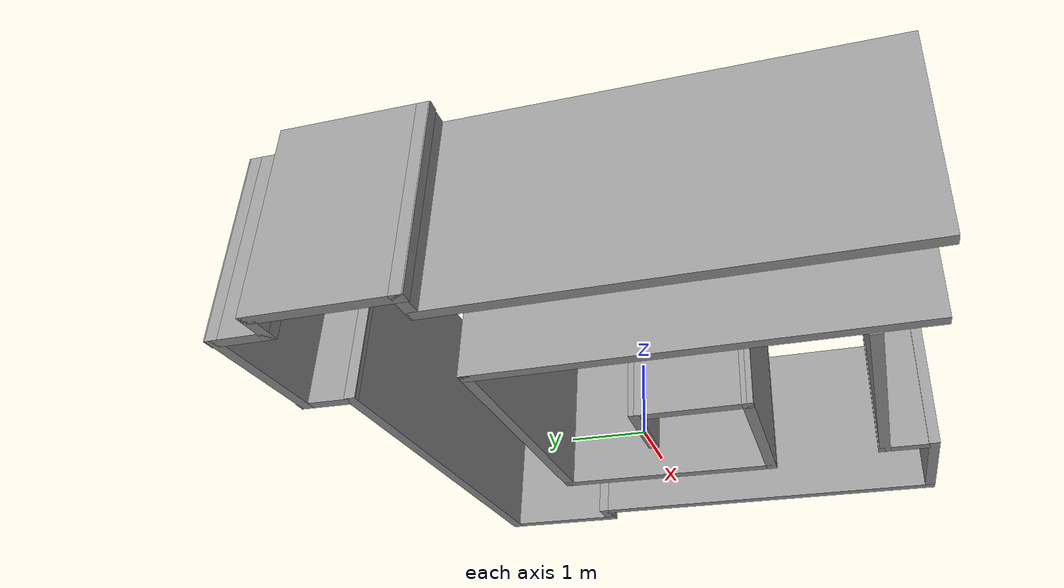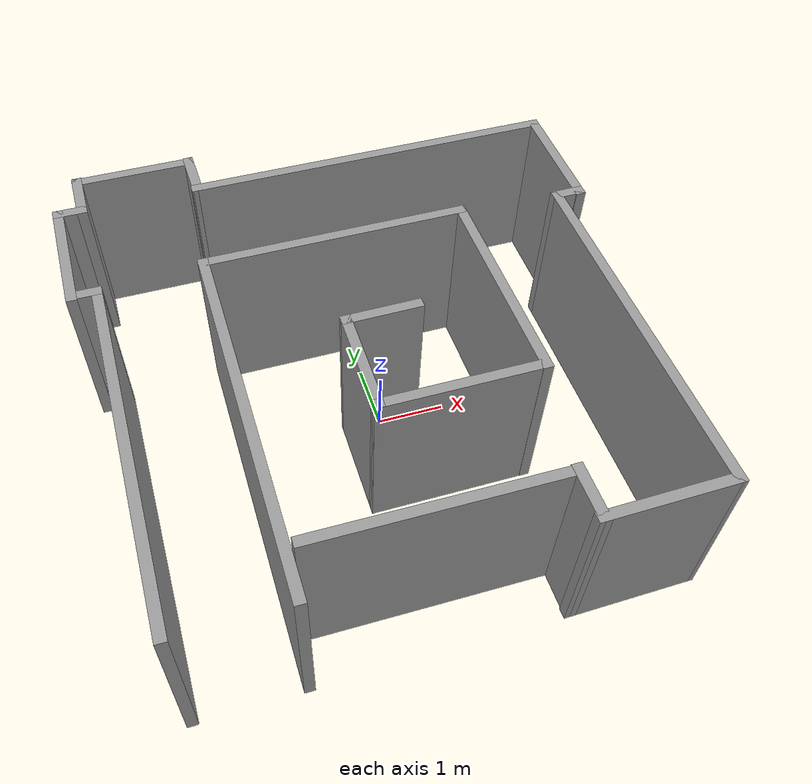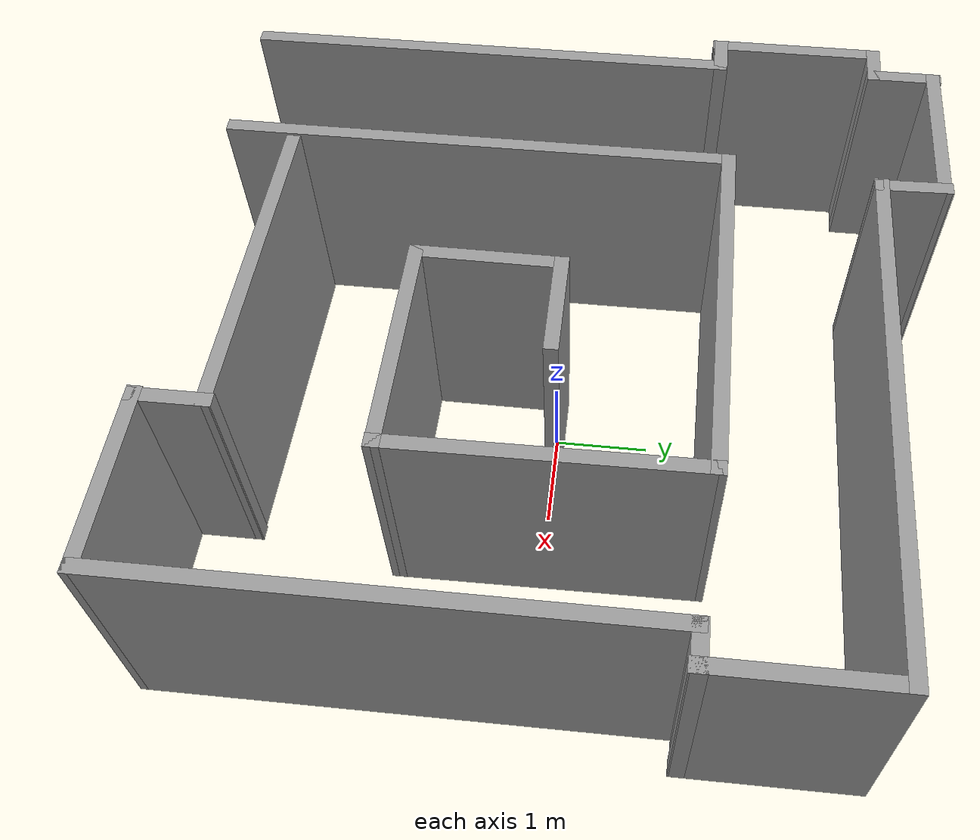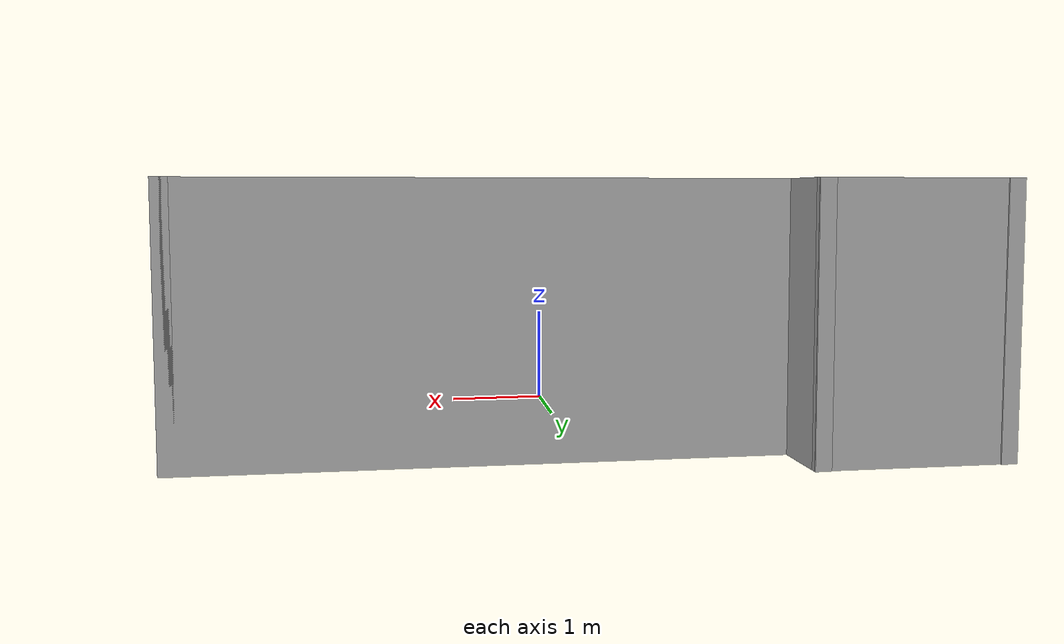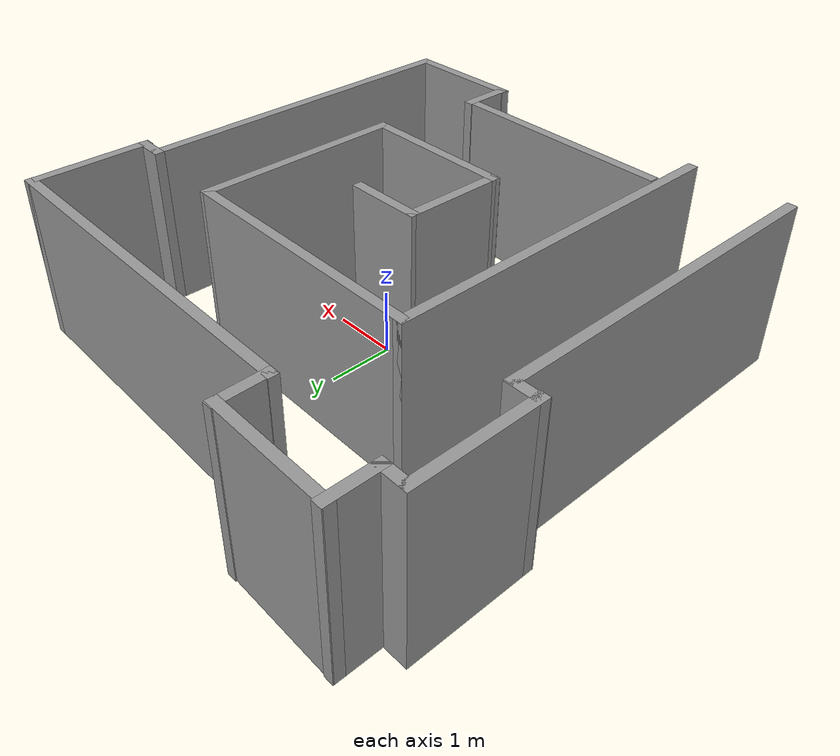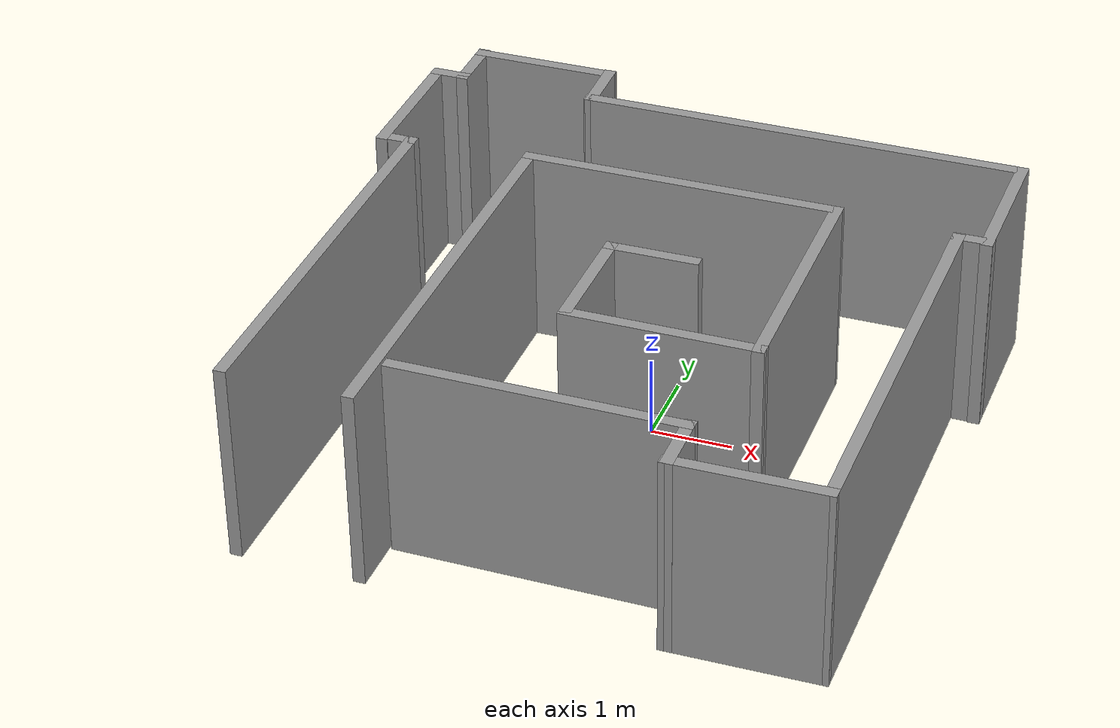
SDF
<?xml version='1.0'?>
<sdf version='1.7'>
  <model name='Muri_9a'>
    <pose>-0.203865 0.066361 0 0 -0 0</pose>
    <link name='Wall_0'>
      <collision name='Wall_0_Collision'>
        <geometry>
          <box>
            <size>5.36043 0.15 2.5</size>
          </box>
        </geometry>
        <pose>0 0 1.25 0 -0 0</pose>
      </collision>
      <visual name='Wall_0_Visual'>
        <pose>0 0 1.25 0 -0 0</pose>
        <geometry>
          <box>
            <size>5.36043 0.15 2.5</size>
          </box>
        </geometry>
        <material>
          <script>
            <uri>file://media/materials/scripts/gazebo.material</uri>
            <name>Gazebo/Grey</name>
          </script>
          <ambient>1 1 1 1</ambient>
        </material>
        <meta>
          <layer>0</layer>
        </meta>
      </visual>
      <pose>-3.425 -1.19359 0 0 -0 1.5708</pose>
    </link>
    <link name='Wall_1'>
      <collision name='Wall_1_Collision'>
        <geometry>
          <box>
            <size>0.5 0.15 2.5</size>
          </box>
        </geometry>
        <pose>0 0 1.25 0 -0 0</pose>
      </collision>
      <visual name='Wall_1_Visual'>
        <pose>0 0 1.25 0 -0 0</pose>
        <geometry>
          <box>
            <size>0.5 0.15 2.5</size>
          </box>
        </geometry>
        <material>
          <script>
            <uri>file://media/materials/scripts/gazebo.material</uri>
            <name>Gazebo/Grey</name>
          </script>
          <ambient>1 1 1 1</ambient>
        </material>
        <meta>
          <layer>0</layer>
        </meta>
      </visual>
      <pose>-3.6 1.42713 0 0 -0 3.14159</pose>
    </link>
    <link name='Wall_10'>
      <collision name='Wall_10_Collision'>
        <geometry>
          <box>
            <size>5.37594 0.15 2.5</size>
          </box>
        </geometry>
        <pose>0 0 1.25 0 -0 0</pose>
      </collision>
      <visual name='Wall_10_Visual'>
        <pose>0 0 1.25 0 -0 0</pose>
        <geometry>
          <box>
            <size>5.37594 0.15 2.5</size>
          </box>
        </geometry>
        <material>
          <script>
            <uri>file://media/materials/scripts/gazebo.material</uri>
            <name>Gazebo/Grey</name>
          </script>
          <ambient>1 1 1 1</ambient>
        </material>
        <meta>
          <layer>0</layer>
        </meta>
      </visual>
      <pose>3.425 -1.18583 0 0 -0 -1.5708</pose>
    </link>
    <link name='Wall_11'>
      <collision name='Wall_11_Collision'>
        <geometry>
          <box>
            <size>1.92066 0.15 2.5</size>
          </box>
        </geometry>
        <pose>0 0 1.25 0 -0 0</pose>
      </collision>
      <visual name='Wall_11_Visual'>
        <pose>0 0 1.25 0 -0 0</pose>
        <geometry>
          <box>
            <size>1.92066 0.15 2.5</size>
          </box>
        </geometry>
        <material>
          <script>
            <uri>file://media/materials/scripts/gazebo.material</uri>
            <name>Gazebo/Grey</name>
          </script>
          <ambient>1 1 1 1</ambient>
        </material>
        <meta>
          <layer>0</layer>
        </meta>
      </visual>
      <pose>2.53971 -3.80656 0 0 -0 -3.13283</pose>
    </link>
    <link name='Wall_12'>
      <collision name='Wall_12_Collision'>
        <geometry>
          <box>
            <size>0.82754 0.15 2.5</size>
          </box>
        </geometry>
        <pose>0 0 1.25 0 -0 0</pose>
      </collision>
      <visual name='Wall_12_Visual'>
        <pose>0 0 1.25 0 -0 0</pose>
        <geometry>
          <box>
            <size>0.82754 0.15 2.5</size>
          </box>
        </geometry>
        <material>
          <script>
            <uri>file://media/materials/scripts/gazebo.material</uri>
            <name>Gazebo/Grey</name>
          </script>
          <ambient>1 1 1 1</ambient>
        </material>
        <meta>
          <layer>0</layer>
        </meta>
      </visual>
      <pose>1.66992 -3.47554 0 0 -0 1.5708</pose>
    </link>
    <link name='Wall_13'>
      <collision name='Wall_13_Collision'>
        <geometry>
          <box>
            <size>3.56405 0.15 2.5</size>
          </box>
        </geometry>
        <pose>0 0 1.25 0 -0 0</pose>
      </collision>
      <visual name='Wall_13_Visual'>
        <pose>0 0 1.25 0 -0 0</pose>
        <geometry>
          <box>
            <size>3.56405 0.15 2.5</size>
          </box>
        </geometry>
        <material>
          <script>
            <uri>file://media/materials/scripts/gazebo.material</uri>
            <name>Gazebo/Grey</name>
          </script>
          <ambient>1 1 1 1</ambient>
        </material>
        <meta>
          <layer>0</layer>
        </meta>
      </visual>
      <pose>-0.037032 -3.13677 0 0 -0 3.13251</pose>
    </link>
    <link name='Wall_15'>
      <collision name='Wall_15_Collision'>
        <geometry>
          <box>
            <size>5.5 0.15 2.5</size>
          </box>
        </geometry>
        <pose>0 0 1.25 0 -0 0</pose>
      </collision>
      <visual name='Wall_15_Visual'>
        <pose>0 0 1.25 0 -0 0</pose>
        <geometry>
          <box>
            <size>5.5 0.15 2.5</size>
          </box>
        </geometry>
        <material>
          <script>
            <uri>file://media/materials/scripts/gazebo.material</uri>
            <name>Gazebo/Grey</name>
          </script>
          <ambient>1 1 1 1</ambient>
        </material>
        <meta>
          <layer>0</layer>
        </meta>
      </visual>
      <pose>-1.92073 -1.1238 0 0 -0 1.5708</pose>
    </link>
    <link name='Wall_16'>
      <collision name='Wall_16_Collision'>
        <geometry>
          <box>
            <size>4 0.15 2.5</size>
          </box>
        </geometry>
        <pose>0 0 1.25 0 -0 0</pose>
      </collision>
      <visual name='Wall_16_Visual'>
        <pose>0 0 1.25 0 -0 0</pose>
        <geometry>
          <box>
            <size>4 0.15 2.5</size>
          </box>
        </geometry>
        <material>
          <script>
            <uri>file://media/materials/scripts/gazebo.material</uri>
            <name>Gazebo/Grey</name>
          </script>
          <ambient>1 1 1 1</ambient>
        </material>
        <meta>
          <layer>0</layer>
        </meta>
      </visual>
      <pose>0.004273 1.5512 0 0 -0 0</pose>
    </link>
    <link name='Wall_17'>
      <collision name='Wall_17_Collision'>
        <geometry>
          <box>
            <size>3.24126 0.15 2.5</size>
          </box>
        </geometry>
        <pose>0 0 1.25 0 -0 0</pose>
      </collision>
      <visual name='Wall_17_Visual'>
        <pose>0 0 1.25 0 -0 0</pose>
        <geometry>
          <box>
            <size>3.24126 0.15 2.5</size>
          </box>
        </geometry>
        <material>
          <script>
            <uri>file://media/materials/scripts/gazebo.material</uri>
            <name>Gazebo/Grey</name>
          </script>
          <ambient>1 1 1 1</ambient>
        </material>
        <meta>
          <layer>0</layer>
        </meta>
      </visual>
      <pose>1.94029 0.005605 0 0 -0 -1.56367</pose>
    </link>
    <link name='Wall_18'>
      <collision name='Wall_18_Collision'>
        <geometry>
          <box>
            <size>2.41562 0.15 2.5</size>
          </box>
        </geometry>
        <pose>0 0 1.25 0 -0 0</pose>
      </collision>
      <visual name='Wall_18_Visual'>
        <pose>0 0 1.25 0 -0 0</pose>
        <geometry>
          <box>
            <size>2.41562 0.15 2.5</size>
          </box>
        </geometry>
        <material>
          <script>
            <uri>file://media/materials/scripts/gazebo.material</uri>
            <name>Gazebo/Grey</name>
          </script>
          <ambient>1 1 1 1</ambient>
        </material>
        <meta>
          <layer>0</layer>
        </meta>
      </visual>
      <pose>0.818509 -1.5333 0 0 -0 3.13958</pose>
    </link>
    <link name='Wall_19'>
      <collision name='Wall_19_Collision'>
        <geometry>
          <box>
            <size>1.60622 0.15 2.5</size>
          </box>
        </geometry>
        <pose>0 0 1.25 0 -0 0</pose>
      </collision>
      <visual name='Wall_19_Visual'>
        <pose>0 0 1.25 0 -0 0</pose>
        <geometry>
          <box>
            <size>1.60622 0.15 2.5</size>
          </box>
        </geometry>
        <material>
          <script>
            <uri>file://media/materials/scripts/gazebo.material</uri>
            <name>Gazebo/Grey</name>
          </script>
          <ambient>1 1 1 1</ambient>
        </material>
        <meta>
          <layer>0</layer>
        </meta>
      </visual>
      <pose>-0.308825 -0.798515 0 0 -0 1.56328</pose>
    </link>
    <link name='Wall_2'>
      <collision name='Wall_2_Collision'>
        <geometry>
          <box>
            <size>1.88957 0.15 2.5</size>
          </box>
        </geometry>
        <pose>0 0 1.25 0 -0 0</pose>
      </collision>
      <visual name='Wall_2_Visual'>
        <pose>0 0 1.25 0 -0 0</pose>
        <geometry>
          <box>
            <size>1.88957 0.15 2.5</size>
          </box>
        </geometry>
        <material>
          <script>
            <uri>file://media/materials/scripts/gazebo.material</uri>
            <name>Gazebo/Grey</name>
          </script>
          <ambient>1 1 1 1</ambient>
        </material>
        <meta>
          <layer>0</layer>
        </meta>
      </visual>
      <pose>-3.775 2.28141 0 0 -0 1.5708</pose>
    </link>
    <link name='Wall_20'>
      <collision name='Wall_20_Collision'>
        <geometry>
          <box>
            <size>1.16122 0.15 2.5</size>
          </box>
        </geometry>
        <pose>0 0 1.25 0 -0 0</pose>
      </collision>
      <visual name='Wall_20_Visual'>
        <pose>0 0 1.25 0 -0 0</pose>
        <geometry>
          <box>
            <size>1.16122 0.15 2.5</size>
          </box>
        </geometry>
        <material>
          <script>
            <uri>file://media/materials/scripts/gazebo.material</uri>
            <name>Gazebo/Grey</name>
          </script>
          <ambient>1 1 1 1</ambient>
        </material>
        <meta>
          <layer>0</layer>
        </meta>
      </visual>
      <pose>0.202247 -0.062751 0 0 -0 0.006461</pose>
    </link>
    <link name='Wall_3'>
      <collision name='Wall_3_Collision'>
        <geometry>
          <box>
            <size>0.5 0.15 2.5</size>
          </box>
        </geometry>
        <pose>0 0 1.25 0 -0 0</pose>
      </collision>
      <visual name='Wall_3_Visual'>
        <pose>0 0 1.25 0 -0 0</pose>
        <geometry>
          <box>
            <size>0.5 0.15 2.5</size>
          </box>
        </geometry>
        <material>
          <script>
            <uri>file://media/materials/scripts/gazebo.material</uri>
            <name>Gazebo/Grey</name>
          </script>
          <ambient>1 1 1 1</ambient>
        </material>
        <meta>
          <layer>0</layer>
        </meta>
      </visual>
      <pose>-3.6 3.1512 0 0 -0 0</pose>
    </link>
    <link name='Wall_4'>
      <collision name='Wall_4_Collision'>
        <geometry>
          <box>
            <size>0.812032 0.15 2.5</size>
          </box>
        </geometry>
        <pose>0 0 1.25 0 -0 0</pose>
      </collision>
      <visual name='Wall_4_Visual'>
        <pose>0 0 1.25 0 -0 0</pose>
        <geometry>
          <box>
            <size>0.812032 0.15 2.5</size>
          </box>
        </geometry>
        <material>
          <script>
            <uri>file://media/materials/scripts/gazebo.material</uri>
            <name>Gazebo/Grey</name>
          </script>
          <ambient>1 1 1 1</ambient>
        </material>
        <meta>
          <layer>0</layer>
        </meta>
      </visual>
      <pose>-3.425 3.48221 0 0 -0 1.5708</pose>
    </link>
    <link name='Wall_5'>
      <collision name='Wall_5_Collision'>
        <geometry>
          <box>
            <size>1.86043 0.15 2.5</size>
          </box>
        </geometry>
        <pose>0 0 1.25 0 -0 0</pose>
      </collision>
      <visual name='Wall_5_Visual'>
        <pose>0 0 1.25 0 -0 0</pose>
        <geometry>
          <box>
            <size>1.86043 0.15 2.5</size>
          </box>
        </geometry>
        <material>
          <script>
            <uri>file://media/materials/scripts/gazebo.material</uri>
            <name>Gazebo/Grey</name>
          </script>
          <ambient>1 1 1 1</ambient>
        </material>
        <meta>
          <layer>0</layer>
        </meta>
      </visual>
      <pose>-2.56979 3.79772 0 0 -0 0</pose>
    </link>
    <link name='Wall_6'>
      <collision name='Wall_6_Collision'>
        <geometry>
          <box>
            <size>0.812213 0.15 2.5</size>
          </box>
        </geometry>
        <pose>0 0 1.25 0 -0 0</pose>
      </collision>
      <visual name='Wall_6_Visual'>
        <pose>0 0 1.25 0 -0 0</pose>
        <geometry>
          <box>
            <size>0.812213 0.15 2.5</size>
          </box>
        </geometry>
        <material>
          <script>
            <uri>file://media/materials/scripts/gazebo.material</uri>
            <name>Gazebo/Grey</name>
          </script>
          <ambient>1 1 1 1</ambient>
        </material>
        <meta>
          <layer>0</layer>
        </meta>
      </visual>
      <pose>-1.70682 3.48221 0 0 -0 -1.54738</pose>
    </link>
    <link name='Wall_7'>
      <collision name='Wall_7_Collision'>
        <geometry>
          <box>
            <size>5.63957 0.15 2.5</size>
          </box>
        </geometry>
        <pose>0 0 1.25 0 -0 0</pose>
      </collision>
      <visual name='Wall_7_Visual'>
        <pose>0 0 1.25 0 -0 0</pose>
        <geometry>
          <box>
            <size>5.63957 0.15 2.5</size>
          </box>
        </geometry>
        <material>
          <script>
            <uri>file://media/materials/scripts/gazebo.material</uri>
            <name>Gazebo/Grey</name>
          </script>
          <ambient>1 1 1 1</ambient>
        </material>
        <meta>
          <layer>0</layer>
        </meta>
      </visual>
      <pose>1.03021 3.1512 0 0 -0 0</pose>
    </link>
    <link name='Wall_8'>
      <collision name='Wall_8_Collision'>
        <geometry>
          <box>
            <size>1.87406 0.15 2.5</size>
          </box>
        </geometry>
        <pose>0 0 1.25 0 -0 0</pose>
      </collision>
      <visual name='Wall_8_Visual'>
        <pose>0 0 1.25 0 -0 0</pose>
        <geometry>
          <box>
            <size>1.87406 0.15 2.5</size>
          </box>
        </geometry>
        <material>
          <script>
            <uri>file://media/materials/scripts/gazebo.material</uri>
            <name>Gazebo/Grey</name>
          </script>
          <ambient>1 1 1 1</ambient>
        </material>
        <meta>
          <layer>0</layer>
        </meta>
      </visual>
      <pose>3.775 2.28917 0 0 -0 -1.5708</pose>
    </link>
    <link name='Wall_9'>
      <collision name='Wall_9_Collision'>
        <geometry>
          <box>
            <size>0.5 0.15 2.5</size>
          </box>
        </geometry>
        <pose>0 0 1.25 0 -0 0</pose>
      </collision>
      <visual name='Wall_9_Visual'>
        <pose>0 0 1.25 0 -0 0</pose>
        <geometry>
          <box>
            <size>0.5 0.15 2.5</size>
          </box>
        </geometry>
        <material>
          <script>
            <uri>file://media/materials/scripts/gazebo.material</uri>
            <name>Gazebo/Grey</name>
          </script>
          <ambient>1 1 1 1</ambient>
        </material>
        <meta>
          <layer>0</layer>
        </meta>
      </visual>
      <pose>3.6 1.44264 0 0 -0 3.14159</pose>
    </link>
    <static>1</static>
  </model>
</sdf>
